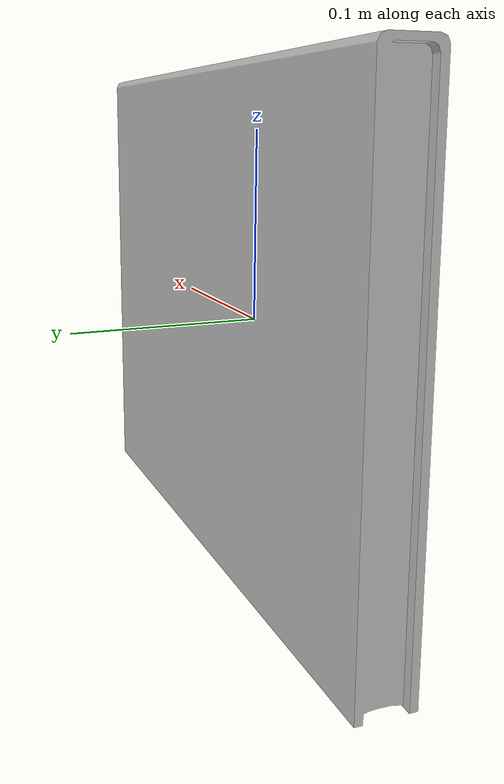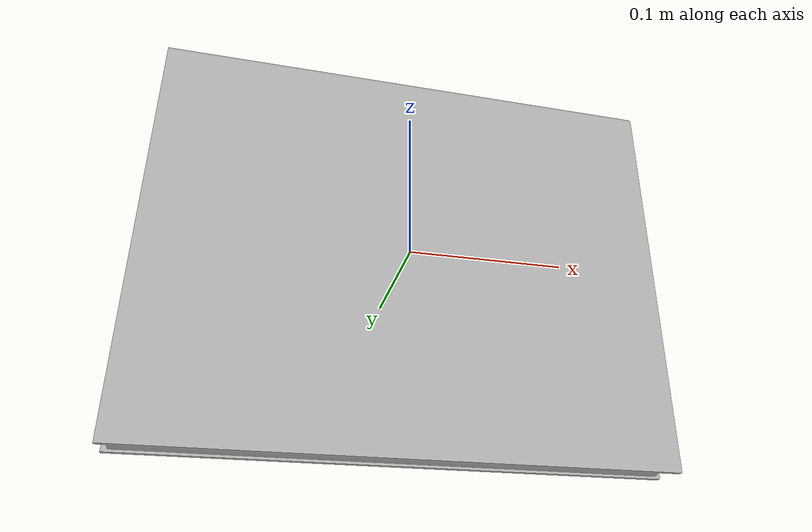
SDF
<?xml version="1.0" ?>
<sdf version="1.4">
  <model name="shelf3_artbook_modernart">
    <link name="body">
      <pose>0 0 0 0 0 0</pose>
      <inertial>
        <pose>   0.001814   0.014000   0.003859 0 0 0</pose>
        <mass>0.5</mass>
        <inertia>
          <ixx>0.01</ixx>
          <ixy>0</ixy>
          <ixz>0</ixz>
          <iyy>0.01</iyy>
          <iyz>0</iyz>
          <izz>0.01</izz>
        </inertia>
      </inertial>
      <collision name="collision">
        <pose>   0.001814   0.014000   0.003859 0 0 0</pose>
        <geometry>
          <box><size>0.335248 0.028860 0.261897</size></box>
        </geometry>
      </collision>
      <visual name="visual">
        <geometry>
          <mesh>
            <uri>model://bookshelf/shelf3_items/artbook_modernart/artbook_modernart.dae</uri>
          </mesh>
        </geometry>
      </visual>
    </link>
  </model>
</sdf>
